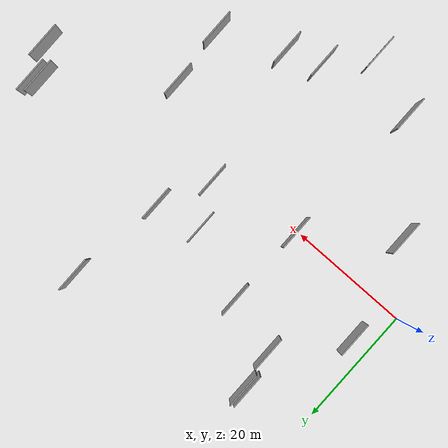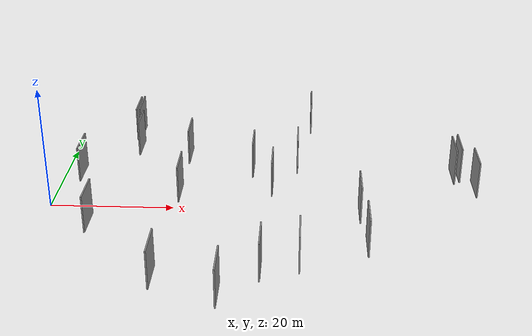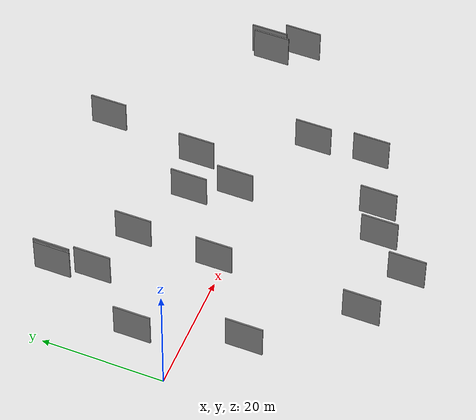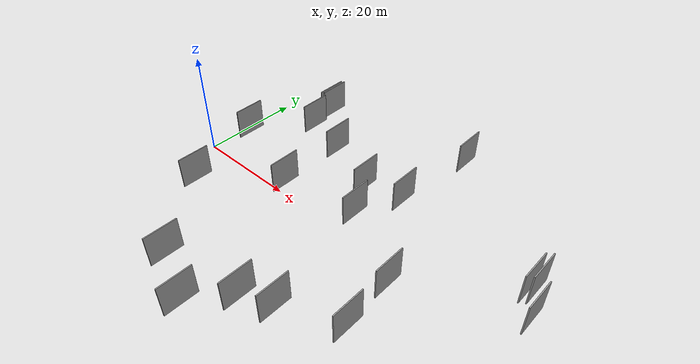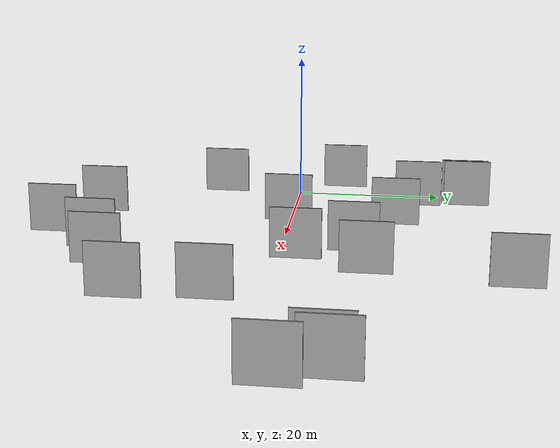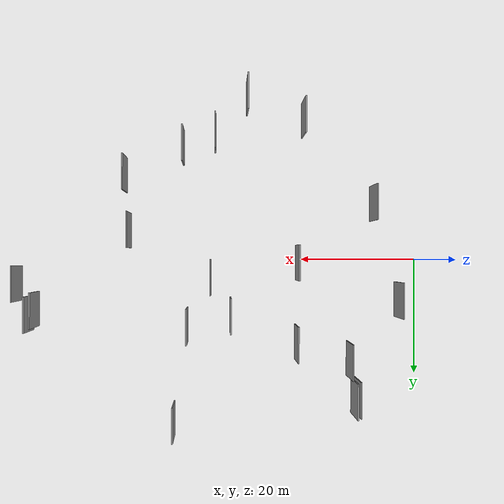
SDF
<sdf version="1.6">
 <world name="default">
  <scene>
   <sky><clouds><speed>12</speed></clouds></sky>
   <ambient>0.4 0.4 0.4 1</ambient>
   <background>0.7 0.7 0.7 1</background>
   <shadows>1</shadows>
  </scene>
  <gravity>0 0 -9.8066</gravity>
  <magnetic_field>6e-06 2.3e-05 -4.2e-05</magnetic_field>
  <physics default="0" name="default_physics" type="ode">
   <ode>
    <solver>
     <type>quick</type>
     <iters>10</iters>
     <sor>1.0</sor>
     <use_dynamic_moi_rescaling>0</use_dynamic_moi_rescaling>
    </solver>
    <constraints>
     <cfm>0</cfm>
     <erp>0.2</erp>
     <contact_max_correcting_vel>100</contact_max_correcting_vel>
     <contact_surface_layer>0.001</contact_surface_layer>
    </constraints>
   </ode>
   <max_step_size>0.004</max_step_size>
   <real_time_factor>1</real_time_factor>
   <real_time_update_rate>250</real_time_update_rate>
  </physics>
  <light name="sun" type="directional">
   <pose>0 0 10 0 0 0</pose>
   <diffuse>0.8 0.8 0.8 1</diffuse>
   <specular>0.2 0.2 0.2 1</specular>
   <attenuation>
    <range>1000</range>
    <constant>0.9</constant>
    <linear>0.01</linear>
    <quadratic>0.001</quadratic>
   </attenuation>
   <direction>-0.5 0.1 -0.9</direction>
  </light>
  <model name="grey_wall_1">
   <static>1</static>
   <pose>11.1036 23.1670 2.5 0.000000 0.000000 1.570796</pose>
   <link name="link">
    <pose>0 0 3.00 0 0 0</pose>
    <collision name="collision"><geometry><box><size>6.00 0.2 6.00</size></box></geometry></collision>
    <visual name="visual">
     <cast_shadows>0</cast_shadows>
     <geometry><box><size>6.00 0.2 6.00</size></box></geometry>
     <material>
      <script>
       <uri>model://grey_wall/materials/scripts</uri>
       <uri>model://grey_wall/materials/textures</uri>
       <name>vrc/grey_wall</name>
      </script>
     </material>
    </visual>
   </link>
  </model>
  <model name="grey_wall_2">
   <static>1</static>
   <pose>66.5422 9.2065 2.5 0.000000 0.000000 1.570796</pose>
   <link name="link">
    <pose>0 0 3.00 0 0 0</pose>
    <collision name="collision"><geometry><box><size>6.00 0.2 6.00</size></box></geometry></collision>
    <visual name="visual">
     <cast_shadows>0</cast_shadows>
     <geometry><box><size>6.00 0.2 6.00</size></box></geometry>
     <material>
      <script>
       <uri>model://grey_wall/materials/scripts</uri>
       <uri>model://grey_wall/materials/textures</uri>
       <name>vrc/grey_wall</name>
      </script>
     </material>
    </visual>
   </link>
  </model>
  <model name="grey_wall_3">
   <static>1</static>
   <pose>40.5682 -19.1948 2.5 0.000000 0.000000 1.570796</pose>
   <link name="link">
    <pose>0 0 3.00 0 0 0</pose>
    <collision name="collision"><geometry><box><size>6.00 0.2 6.00</size></box></geometry></collision>
    <visual name="visual">
     <cast_shadows>0</cast_shadows>
     <geometry><box><size>6.00 0.2 6.00</size></box></geometry>
     <material>
      <script>
       <uri>model://grey_wall/materials/scripts</uri>
       <uri>model://grey_wall/materials/textures</uri>
       <name>vrc/grey_wall</name>
      </script>
     </material>
    </visual>
   </link>
  </model>
  <model name="grey_wall_4">
   <static>1</static>
   <pose>49.6750 -4.9144 2.5 0.000000 0.000000 1.570796</pose>
   <link name="link">
    <pose>0 0 3.00 0 0 0</pose>
    <collision name="collision"><geometry><box><size>6.00 0.2 6.00</size></box></geometry></collision>
    <visual name="visual">
     <cast_shadows>0</cast_shadows>
     <geometry><box><size>6.00 0.2 6.00</size></box></geometry>
     <material>
      <script>
       <uri>model://grey_wall/materials/scripts</uri>
       <uri>model://grey_wall/materials/textures</uri>
       <name>vrc/grey_wall</name>
      </script>
     </material>
    </visual>
   </link>
  </model>
  <model name="grey_wall_5">
   <static>1</static>
   <pose>42.1388 27.3576 2.5 0.000000 0.000000 1.570796</pose>
   <link name="link">
    <pose>0 0 3.00 0 0 0</pose>
    <collision name="collision"><geometry><box><size>6.00 0.2 6.00</size></box></geometry></collision>
    <visual name="visual">
     <cast_shadows>0</cast_shadows>
     <geometry><box><size>6.00 0.2 6.00</size></box></geometry>
     <material>
      <script>
       <uri>model://grey_wall/materials/scripts</uri>
       <uri>model://grey_wall/materials/textures</uri>
       <name>vrc/grey_wall</name>
      </script>
     </material>
    </visual>
   </link>
  </model>
  <model name="grey_wall_6">
   <static>1</static>
   <pose>4.1784 6.8211 2.5 0.000000 0.000000 1.570796</pose>
   <link name="link">
    <pose>0 0 3.00 0 0 0</pose>
    <collision name="collision"><geometry><box><size>6.00 0.2 6.00</size></box></geometry></collision>
    <visual name="visual">
     <cast_shadows>0</cast_shadows>
     <geometry><box><size>6.00 0.2 6.00</size></box></geometry>
     <material>
      <script>
       <uri>model://grey_wall/materials/scripts</uri>
       <uri>model://grey_wall/materials/textures</uri>
       <name>vrc/grey_wall</name>
      </script>
     </material>
    </visual>
   </link>
  </model>
  <model name="grey_wall_7">
   <static>1</static>
   <pose>12.4203 17.0037 2.5 0.000000 0.000000 1.570796</pose>
   <link name="link">
    <pose>0 0 3.00 0 0 0</pose>
    <collision name="collision"><geometry><box><size>6.00 0.2 6.00</size></box></geometry></collision>
    <visual name="visual">
     <cast_shadows>0</cast_shadows>
     <geometry><box><size>6.00 0.2 6.00</size></box></geometry>
     <material>
      <script>
       <uri>model://grey_wall/materials/scripts</uri>
       <uri>model://grey_wall/materials/textures</uri>
       <name>vrc/grey_wall</name>
      </script>
     </material>
    </visual>
   </link>
  </model>
  <model name="grey_wall_8">
   <static>1</static>
   <pose>8.4605 -9.5277 2.5 0.000000 0.000000 1.570796</pose>
   <link name="link">
    <pose>0 0 3.00 0 0 0</pose>
    <collision name="collision"><geometry><box><size>6.00 0.2 6.00</size></box></geometry></collision>
    <visual name="visual">
     <cast_shadows>0</cast_shadows>
     <geometry><box><size>6.00 0.2 6.00</size></box></geometry>
     <material>
      <script>
       <uri>model://grey_wall/materials/scripts</uri>
       <uri>model://grey_wall/materials/textures</uri>
       <name>vrc/grey_wall</name>
      </script>
     </material>
    </visual>
   </link>
  </model>
  <model name="grey_wall_9">
   <static>1</static>
   <pose>20.2135 -23.8576 2.5 0.000000 0.000000 1.570796</pose>
   <link name="link">
    <pose>0 0 3.00 0 0 0</pose>
    <collision name="collision"><geometry><box><size>6.00 0.2 6.00</size></box></geometry></collision>
    <visual name="visual">
     <cast_shadows>0</cast_shadows>
     <geometry><box><size>6.00 0.2 6.00</size></box></geometry>
     <material>
      <script>
       <uri>model://grey_wall/materials/scripts</uri>
       <uri>model://grey_wall/materials/textures</uri>
       <name>vrc/grey_wall</name>
      </script>
     </material>
    </visual>
   </link>
  </model>
  <model name="grey_wall_10">
   <static>1</static>
   <pose>21.2488 0.5571 2.5 0.000000 0.000000 1.570796</pose>
   <link name="link">
    <pose>0 0 3.00 0 0 0</pose>
    <collision name="collision"><geometry><box><size>6.00 0.2 6.00</size></box></geometry></collision>
    <visual name="visual">
     <cast_shadows>0</cast_shadows>
     <geometry><box><size>6.00 0.2 6.00</size></box></geometry>
     <material>
      <script>
       <uri>model://grey_wall/materials/scripts</uri>
       <uri>model://grey_wall/materials/textures</uri>
       <name>vrc/grey_wall</name>
      </script>
     </material>
    </visual>
   </link>
  </model>
  <model name="grey_wall_11">
   <static>1</static>
   <pose>29.6830 -27.7446 2.5 0.000000 0.000000 1.570796</pose>
   <link name="link">
    <pose>0 0 3.00 0 0 0</pose>
    <collision name="collision"><geometry><box><size>6.00 0.2 6.00</size></box></geometry></collision>
    <visual name="visual">
     <cast_shadows>0</cast_shadows>
     <geometry><box><size>6.00 0.2 6.00</size></box></geometry>
     <material>
      <script>
       <uri>model://grey_wall/materials/scripts</uri>
       <uri>model://grey_wall/materials/textures</uri>
       <name>vrc/grey_wall</name>
      </script>
     </material>
    </visual>
   </link>
  </model>
  <model name="grey_wall_12">
   <static>1</static>
   <pose>11.6323 23.4320 2.5 0.000000 0.000000 1.570796</pose>
   <link name="link">
    <pose>0 0 3.00 0 0 0</pose>
    <collision name="collision"><geometry><box><size>6.00 0.2 6.00</size></box></geometry></collision>
    <visual name="visual">
     <cast_shadows>0</cast_shadows>
     <geometry><box><size>6.00 0.2 6.00</size></box></geometry>
     <material>
      <script>
       <uri>model://grey_wall/materials/scripts</uri>
       <uri>model://grey_wall/materials/textures</uri>
       <name>vrc/grey_wall</name>
      </script>
     </material>
    </visual>
   </link>
  </model>
  <model name="grey_wall_13">
   <static>1</static>
   <pose>21.4101 14.1088 2.5 0.000000 0.000000 1.570796</pose>
   <link name="link">
    <pose>0 0 3.00 0 0 0</pose>
    <collision name="collision"><geometry><box><size>6.00 0.2 6.00</size></box></geometry></collision>
    <visual name="visual">
     <cast_shadows>0</cast_shadows>
     <geometry><box><size>6.00 0.2 6.00</size></box></geometry>
     <material>
      <script>
       <uri>model://grey_wall/materials/scripts</uri>
       <uri>model://grey_wall/materials/textures</uri>
       <name>vrc/grey_wall</name>
      </script>
     </material>
    </visual>
   </link>
  </model>
  <model name="grey_wall_14">
   <static>1</static>
   <pose>68.5595 4.1075 2.5 0.000000 0.000000 1.570796</pose>
   <link name="link">
    <pose>0 0 3.00 0 0 0</pose>
    <collision name="collision"><geometry><box><size>6.00 0.2 6.00</size></box></geometry></collision>
    <visual name="visual">
     <cast_shadows>0</cast_shadows>
     <geometry><box><size>6.00 0.2 6.00</size></box></geometry>
     <material>
      <script>
       <uri>model://grey_wall/materials/scripts</uri>
       <uri>model://grey_wall/materials/textures</uri>
       <name>vrc/grey_wall</name>
      </script>
     </material>
    </visual>
   </link>
  </model>
  <model name="grey_wall_15">
   <static>1</static>
   <pose>35.1223 -21.3463 2.5 0.000000 0.000000 1.570796</pose>
   <link name="link">
    <pose>0 0 3.00 0 0 0</pose>
    <collision name="collision"><geometry><box><size>6.00 0.2 6.00</size></box></geometry></collision>
    <visual name="visual">
     <cast_shadows>0</cast_shadows>
     <geometry><box><size>6.00 0.2 6.00</size></box></geometry>
     <material>
      <script>
       <uri>model://grey_wall/materials/scripts</uri>
       <uri>model://grey_wall/materials/textures</uri>
       <name>vrc/grey_wall</name>
      </script>
     </material>
    </visual>
   </link>
  </model>
  <model name="grey_wall_16">
   <static>1</static>
   <pose>39.8815 11.1920 2.5 0.000000 0.000000 1.570796</pose>
   <link name="link">
    <pose>0 0 3.00 0 0 0</pose>
    <collision name="collision"><geometry><box><size>6.00 0.2 6.00</size></box></geometry></collision>
    <visual name="visual">
     <cast_shadows>0</cast_shadows>
     <geometry><box><size>6.00 0.2 6.00</size></box></geometry>
     <material>
      <script>
       <uri>model://grey_wall/materials/scripts</uri>
       <uri>model://grey_wall/materials/textures</uri>
       <name>vrc/grey_wall</name>
      </script>
     </material>
    </visual>
   </link>
  </model>
  <model name="grey_wall_17">
   <static>1</static>
   <pose>50.3972 -14.4503 2.5 0.000000 0.000000 1.570796</pose>
   <link name="link">
    <pose>0 0 3.00 0 0 0</pose>
    <collision name="collision"><geometry><box><size>6.00 0.2 6.00</size></box></geometry></collision>
    <visual name="visual">
     <cast_shadows>0</cast_shadows>
     <geometry><box><size>6.00 0.2 6.00</size></box></geometry>
     <material>
      <script>
       <uri>model://grey_wall/materials/scripts</uri>
       <uri>model://grey_wall/materials/textures</uri>
       <name>vrc/grey_wall</name>
      </script>
     </material>
    </visual>
   </link>
  </model>
  <model name="grey_wall_18">
   <static>1</static>
   <pose>35.9150 2.9865 2.5 0.000000 0.000000 1.570796</pose>
   <link name="link">
    <pose>0 0 3.00 0 0 0</pose>
    <collision name="collision"><geometry><box><size>6.00 0.2 6.00</size></box></geometry></collision>
    <visual name="visual">
     <cast_shadows>0</cast_shadows>
     <geometry><box><size>6.00 0.2 6.00</size></box></geometry>
     <material>
      <script>
       <uri>model://grey_wall/materials/scripts</uri>
       <uri>model://grey_wall/materials/textures</uri>
       <name>vrc/grey_wall</name>
      </script>
     </material>
    </visual>
   </link>
  </model>
  <model name="grey_wall_19">
   <static>1</static>
   <pose>32.5265 9.4246 2.5 0.000000 0.000000 1.570796</pose>
   <link name="link">
    <pose>0 0 3.00 0 0 0</pose>
    <collision name="collision"><geometry><box><size>6.00 0.2 6.00</size></box></geometry></collision>
    <visual name="visual">
     <cast_shadows>0</cast_shadows>
     <geometry><box><size>6.00 0.2 6.00</size></box></geometry>
     <material>
      <script>
       <uri>model://grey_wall/materials/scripts</uri>
       <uri>model://grey_wall/materials/textures</uri>
       <name>vrc/grey_wall</name>
      </script>
     </material>
    </visual>
   </link>
  </model>
  <model name="grey_wall_20">
   <static>1</static>
   <pose>65.5849 8.5255 2.5 0.000000 0.000000 1.570796</pose>
   <link name="link">
    <pose>0 0 3.00 0 0 0</pose>
    <collision name="collision"><geometry><box><size>6.00 0.2 6.00</size></box></geometry></collision>
    <visual name="visual">
     <cast_shadows>0</cast_shadows>
     <geometry><box><size>6.00 0.2 6.00</size></box></geometry>
     <material>
      <script>
       <uri>model://grey_wall/materials/scripts</uri>
       <uri>model://grey_wall/materials/textures</uri>
       <name>vrc/grey_wall</name>
      </script>
     </material>
    </visual>
   </link>
  </model>
 </world>
</sdf>
